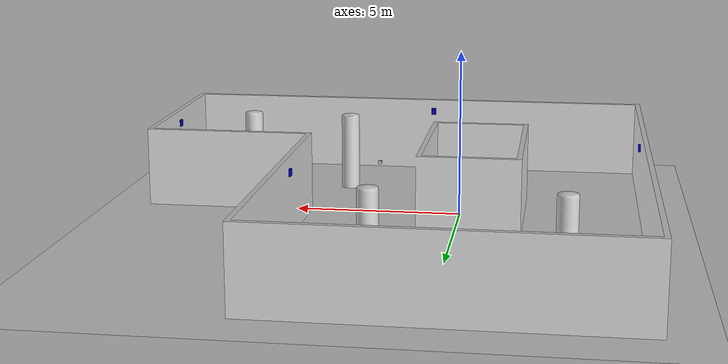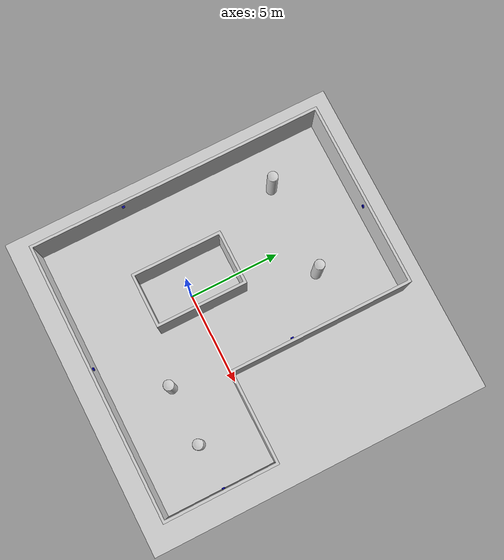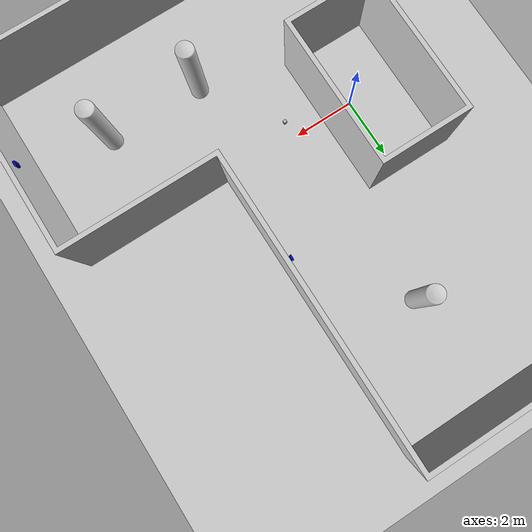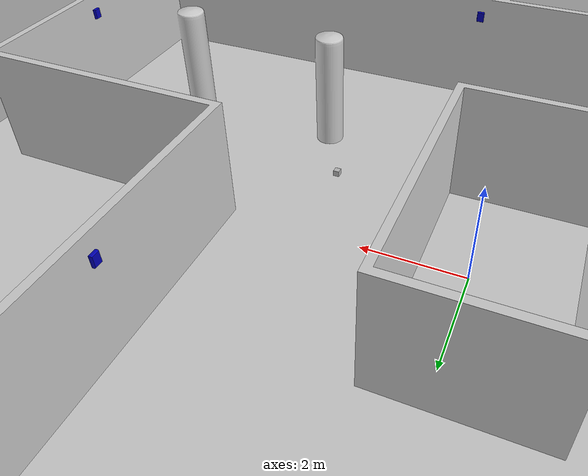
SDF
<sdf version='1.6'>
  <world name='default'>

    <plugin
      filename="ignition-gazebo-sensors-system"
      name="gz::sim::systems::Sensors">
    </plugin>

    <plugin filename="ignition-gazebo-physics-system"
            name="gz::sim::systems::Physics">
    </plugin>
    <plugin filename="ignition-gazebo-user-commands-system"
            name="gz::sim::systems::UserCommands">
    </plugin>
    <plugin filename="ignition-gazebo-scene-broadcaster-system"
            name="gz::sim::systems::SceneBroadcaster">
    </plugin>

    <model name="camera_model">
      <pose>2.5 0 1.5 0 0.0 3.14</pose>
      <link name="link">
        <pose>0.05 0.05 0.05 0 0 0</pose>
        <inertial>
          <mass>0.1</mass>
          <inertia>
            <ixx>0.000166667</ixx>
            <iyy>0.000166667</iyy>
            <izz>0.000166667</izz>
          </inertia>
        </inertial>
        <collision name="collision">
          <geometry>
            <box>
              <size>0.1 0.1 0.1</size>
            </box>
          </geometry>
        </collision>
        <visual name="visual">
          <geometry>
            <box>
              <size>0.1 0.1 0.1</size>
            </box>
          </geometry>
        </visual>
        <sensor name="camera" type="camera">
          <camera>
            <horizontal_fov>1.047</horizontal_fov>
            <image>
              <width>320</width>
              <height>240</height>
            </image>
            <clip>
              <near>0.1</near>
              <far>100</far>
            </clip>
          </camera>
          <always_on>1</always_on>
          <update_rate>30</update_rate>
          <visualize>true</visualize>
          <topic>camera</topic>
        </sensor>
      </link>
      <static>true</static>
    </model>

    <!-- A global light source -->
    <light type="directional" name="sun">
      <cast_shadows>false</cast_shadows>
      <pose>50 0 50 0 0 0</pose>
      <diffuse>0.8 0.8 0.8 1</diffuse>
      <specular>0.2 0.2 0.2 1</specular>
      <attenuation>
        <range>1000</range>
        <constant>0.9</constant>
        <linear>0.01</linear>
        <quadratic>0.001</quadratic>
      </attenuation>
      <direction>-0.5 0.1 -0.9</direction>
    </light>

    <!-- Add the Ground Plane -->
    <model name="ground_plane">
      <static>true</static>
      <link name="link">
        <collision name="collision">
          <geometry>
            <plane>
              <normal>0 0 1</normal>
              <size>100 100</size>
            </plane>
          </geometry>
        </collision>
        <visual name="visual">
          <geometry>
            <plane>
              <normal>0 0 1</normal>
              <size>100 100</size>
            </plane>
          </geometry>
          <material>
            <ambient>0.8 0.8 0.8 1</ambient>
            <diffuse>0.8 0.8 0.8 1</diffuse>
            <specular>0.8 0.8 0.8 1</specular>
            <specular>0.8 0.8 0.8 1</specular>
          </material>
        </visual>
      </link>
    </model>

    <!-- add a box to test collision-->

    <!-- Load the UWB Beacons -->
    <include>
      <uri>model://models/uwb_beacon</uri>
      <name>uwb_beacon_0</name>
      <pose>4.50 3.48 2.0 3.14 1.54 3.14</pose>
    </include>

    <include>
      <uri>model://models/uwb_beacon</uri>
      <name>uwb_beacon_1</name>
      <pose>9.52 -2.89 2.0 3.14 1.54 3.14</pose>
    </include>

    <include>
      <uri>model://models/uwb_beacon</uri>
      <name>uwb_beacon_2</name>
      <pose>1.42 -6.02 2.00 3.14 1.54 1.56</pose>
    </include>

    <include>
      <uri>model://models/uwb_beacon</uri>
      <name>uwb_beacon_3</name>
      <pose>-5.37 -1.09 2.00 3.14 1.54 3.14</pose>
    </include>

    <include>
      <uri>model://models/uwb_beacon</uri>
      <name>uwb_beacon_4</name>
      <pose>0.13 9.82 2.00 3.14 1.54 1.56</pose>
    </include>

    <!-- Load world -->
    <include>
      <uri>model://models/room_1</uri>
    </include>

  </world>
</sdf>

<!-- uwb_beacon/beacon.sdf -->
<sdf version='1.6'>
  <model name="beacon">
    <static>true</static>

    <link name="beacon_link">
      <pose>0 0 0 0 0 0</pose>

      <visual name="beacon_visual">
        <geometry>
          <mesh>
            <uri>model://models/uwb_beacon/meshes/beacon.stl</uri>
            <scale>1 1 1</scale>
          </mesh>
        </geometry>
        <material>
          <ambient> 0.0 0.0 0.6 1</ambient>
          <diffuse> 0.0 0.0 0.7 1</diffuse>
          <specular>0.5 0.5 0.5 1</specular>
          <emissive>0.0 0.0 0.2 1</emissive>
        </material>
      </visual>

      <collision name="beacon_colission">
        <geometry>
          <mesh>
            <uri>model://models/uwb_beacon/meshes/beacon.stl</uri>
            <scale>1 1 1</scale>
          </mesh>
        </geometry>
      </collision>

    </link>
  </model>
</sdf>

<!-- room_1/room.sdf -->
<sdf version='1.6'>
  <model name="room">
    <static>true</static>

    <link name="room_link">
      <pose>0 0 0 0 0 0</pose>

      <visual name="room_visual">
        <geometry>
          <mesh>
            <uri>model://models/room_1/meshes/test_room_1.stl</uri>
            <scale>1 1 1</scale>
          </mesh>
        </geometry>
        <material>
            <ambient>0.8 0.8 0.8 1</ambient>
            <diffuse>0.8 0.8 0.8 1</diffuse>
            <specular>0.8 0.8 0.8 1</specular>
            <specular>0.8 0.8 0.8 1</specular>
        </material>
      </visual>

      <collision name="room_colission">
        <geometry>
          <mesh>
            <uri>model://models/room_1/meshes/test_room_1.stl</uri>
            <scale>1 1 1</scale>
          </mesh>
        </geometry>
      </collision>

    </link>
  </model>
</sdf>
